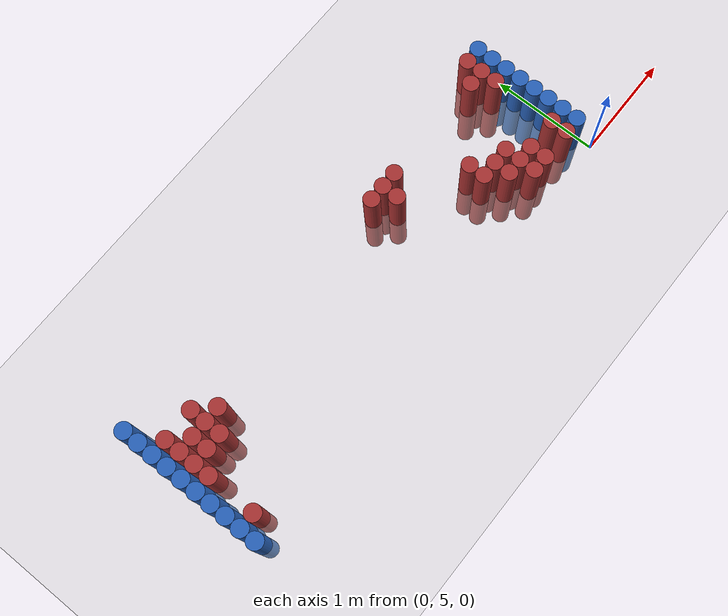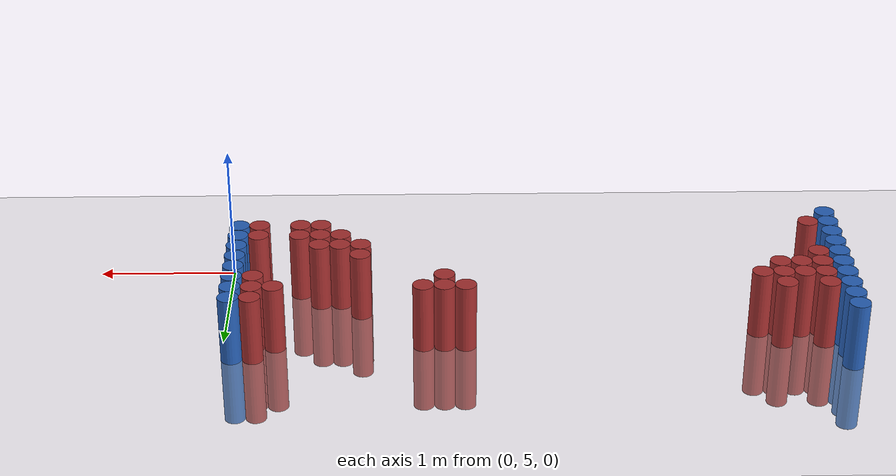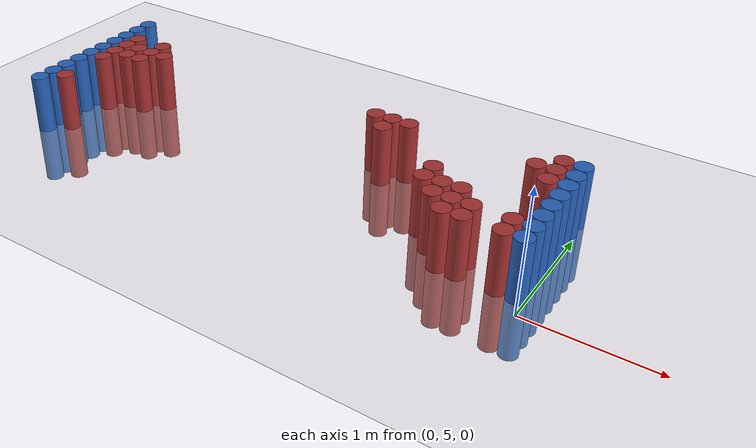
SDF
<sdf version="1.6">
 <world name="default">
  <model name="ground_plane">
   <static>1</static>
   <link name="link">
    <collision name="collision">
     <geometry><plane><normal>0 0 1</normal><size>100 100</size></plane></geometry>
     <surface><friction><ode><mu>100</mu><mu2>50</mu2></ode></friction></surface>
    </collision>
    <visual name="visual">
     <cast_shadows>0</cast_shadows>
     <geometry><plane><normal>0 0 1</normal><size>100 100</size></plane></geometry>
     <material>
      <script><uri>file://media/materials/scripts/gazebo.material</uri><name>Gazebo/Grey</name></script>
     </material>
    </visual>
   </link>
  </model>
  <model name="unit_cylinder_95">
   <static>1</static>
   <pose>-4.425000 5.025000 0.000000 0.000000 0.000000 0.000000</pose>
   <link name="link">
    <inertial>
     <mass>1</mass>
     <inertia><ixx>0.145833</ixx><ixy>0</ixy><ixz>0</ixz><iyy>0.145833</iyy><iyz>0</iyz><izz>0.125</izz></inertia>
    </inertial>
    <collision name="collision">
     <geometry><cylinder><radius>0.075000</radius><length>1</length></cylinder></geometry>
    </collision>
    <visual name="visual">
     <geometry><cylinder><radius>0.075000</radius><length>1</length></cylinder></geometry>
     <material>
      <ambient>0.152000 0.379000 0.720000 1</ambient>
      <diffuse>0.152000 0.379000 0.720000 1</diffuse>
     </material>
     <material>
      <script><name>Gazebo/Grey</name><uri>file://media/materials/scripts/gazebo.material</uri></script>
     </material>
    </visual>
   </link>
  </model>
  <model name="unit_cylinder_96">
   <static>1</static>
   <pose>-4.425000 5.175000 0.000000 0.000000 0.000000 0.000000</pose>
   <link name="link">
    <inertial>
     <mass>1</mass>
     <inertia><ixx>0.145833</ixx><ixy>0</ixy><ixz>0</ixz><iyy>0.145833</iyy><iyz>0</iyz><izz>0.125</izz></inertia>
    </inertial>
    <collision name="collision">
     <geometry><cylinder><radius>0.075000</radius><length>1</length></cylinder></geometry>
    </collision>
    <visual name="visual">
     <geometry><cylinder><radius>0.075000</radius><length>1</length></cylinder></geometry>
     <material>
      <ambient>0.152000 0.379000 0.720000 1</ambient>
      <diffuse>0.152000 0.379000 0.720000 1</diffuse>
     </material>
     <material>
      <script><name>Gazebo/Grey</name><uri>file://media/materials/scripts/gazebo.material</uri></script>
     </material>
    </visual>
   </link>
  </model>
  <model name="unit_cylinder_97">
   <static>1</static>
   <pose>-4.425000 5.325000 0.000000 0.000000 0.000000 0.000000</pose>
   <link name="link">
    <inertial>
     <mass>1</mass>
     <inertia><ixx>0.145833</ixx><ixy>0</ixy><ixz>0</ixz><iyy>0.145833</iyy><iyz>0</iyz><izz>0.125</izz></inertia>
    </inertial>
    <collision name="collision">
     <geometry><cylinder><radius>0.075000</radius><length>1</length></cylinder></geometry>
    </collision>
    <visual name="visual">
     <geometry><cylinder><radius>0.075000</radius><length>1</length></cylinder></geometry>
     <material>
      <ambient>0.152000 0.379000 0.720000 1</ambient>
      <diffuse>0.152000 0.379000 0.720000 1</diffuse>
     </material>
     <material>
      <script><name>Gazebo/Grey</name><uri>file://media/materials/scripts/gazebo.material</uri></script>
     </material>
    </visual>
   </link>
  </model>
  <model name="unit_cylinder_98">
   <static>1</static>
   <pose>-4.425000 5.475000 0.000000 0.000000 0.000000 0.000000</pose>
   <link name="link">
    <inertial>
     <mass>1</mass>
     <inertia><ixx>0.145833</ixx><ixy>0</ixy><ixz>0</ixz><iyy>0.145833</iyy><iyz>0</iyz><izz>0.125</izz></inertia>
    </inertial>
    <collision name="collision">
     <geometry><cylinder><radius>0.075000</radius><length>1</length></cylinder></geometry>
    </collision>
    <visual name="visual">
     <geometry><cylinder><radius>0.075000</radius><length>1</length></cylinder></geometry>
     <material>
      <ambient>0.152000 0.379000 0.720000 1</ambient>
      <diffuse>0.152000 0.379000 0.720000 1</diffuse>
     </material>
     <material>
      <script><name>Gazebo/Grey</name><uri>file://media/materials/scripts/gazebo.material</uri></script>
     </material>
    </visual>
   </link>
  </model>
  <model name="unit_cylinder_99">
   <static>1</static>
   <pose>-4.425000 5.625000 0.000000 0.000000 0.000000 0.000000</pose>
   <link name="link">
    <inertial>
     <mass>1</mass>
     <inertia><ixx>0.145833</ixx><ixy>0</ixy><ixz>0</ixz><iyy>0.145833</iyy><iyz>0</iyz><izz>0.125</izz></inertia>
    </inertial>
    <collision name="collision">
     <geometry><cylinder><radius>0.075000</radius><length>1</length></cylinder></geometry>
    </collision>
    <visual name="visual">
     <geometry><cylinder><radius>0.075000</radius><length>1</length></cylinder></geometry>
     <material>
      <ambient>0.152000 0.379000 0.720000 1</ambient>
      <diffuse>0.152000 0.379000 0.720000 1</diffuse>
     </material>
     <material>
      <script><name>Gazebo/Grey</name><uri>file://media/materials/scripts/gazebo.material</uri></script>
     </material>
    </visual>
   </link>
  </model>
  <model name="unit_cylinder_100">
   <static>1</static>
   <pose>-4.425000 5.775000 0.000000 0.000000 0.000000 0.000000</pose>
   <link name="link">
    <inertial>
     <mass>1</mass>
     <inertia><ixx>0.145833</ixx><ixy>0</ixy><ixz>0</ixz><iyy>0.145833</iyy><iyz>0</iyz><izz>0.125</izz></inertia>
    </inertial>
    <collision name="collision">
     <geometry><cylinder><radius>0.075000</radius><length>1</length></cylinder></geometry>
    </collision>
    <visual name="visual">
     <geometry><cylinder><radius>0.075000</radius><length>1</length></cylinder></geometry>
     <material>
      <ambient>0.152000 0.379000 0.720000 1</ambient>
      <diffuse>0.152000 0.379000 0.720000 1</diffuse>
     </material>
     <material>
      <script><name>Gazebo/Grey</name><uri>file://media/materials/scripts/gazebo.material</uri></script>
     </material>
    </visual>
   </link>
  </model>
  <model name="unit_cylinder_101">
   <static>1</static>
   <pose>-4.425000 5.925000 0.000000 0.000000 0.000000 0.000000</pose>
   <link name="link">
    <inertial>
     <mass>1</mass>
     <inertia><ixx>0.145833</ixx><ixy>0</ixy><ixz>0</ixz><iyy>0.145833</iyy><iyz>0</iyz><izz>0.125</izz></inertia>
    </inertial>
    <collision name="collision">
     <geometry><cylinder><radius>0.075000</radius><length>1</length></cylinder></geometry>
    </collision>
    <visual name="visual">
     <geometry><cylinder><radius>0.075000</radius><length>1</length></cylinder></geometry>
     <material>
      <ambient>0.152000 0.379000 0.720000 1</ambient>
      <diffuse>0.152000 0.379000 0.720000 1</diffuse>
     </material>
     <material>
      <script><name>Gazebo/Grey</name><uri>file://media/materials/scripts/gazebo.material</uri></script>
     </material>
    </visual>
   </link>
  </model>
  <model name="unit_cylinder_102">
   <static>1</static>
   <pose>-4.425000 6.075000 0.000000 0.000000 0.000000 0.000000</pose>
   <link name="link">
    <inertial>
     <mass>1</mass>
     <inertia><ixx>0.145833</ixx><ixy>0</ixy><ixz>0</ixz><iyy>0.145833</iyy><iyz>0</iyz><izz>0.125</izz></inertia>
    </inertial>
    <collision name="collision">
     <geometry><cylinder><radius>0.075000</radius><length>1</length></cylinder></geometry>
    </collision>
    <visual name="visual">
     <geometry><cylinder><radius>0.075000</radius><length>1</length></cylinder></geometry>
     <material>
      <ambient>0.152000 0.379000 0.720000 1</ambient>
      <diffuse>0.152000 0.379000 0.720000 1</diffuse>
     </material>
     <material>
      <script><name>Gazebo/Grey</name><uri>file://media/materials/scripts/gazebo.material</uri></script>
     </material>
    </visual>
   </link>
  </model>
  <model name="unit_cylinder_103">
   <static>1</static>
   <pose>-4.425000 6.225000 0.000000 0.000000 0.000000 0.000000</pose>
   <link name="link">
    <inertial>
     <mass>1</mass>
     <inertia><ixx>0.145833</ixx><ixy>0</ixy><ixz>0</ixz><iyy>0.145833</iyy><iyz>0</iyz><izz>0.125</izz></inertia>
    </inertial>
    <collision name="collision">
     <geometry><cylinder><radius>0.075000</radius><length>1</length></cylinder></geometry>
    </collision>
    <visual name="visual">
     <geometry><cylinder><radius>0.075000</radius><length>1</length></cylinder></geometry>
     <material>
      <ambient>0.152000 0.379000 0.720000 1</ambient>
      <diffuse>0.152000 0.379000 0.720000 1</diffuse>
     </material>
     <material>
      <script><name>Gazebo/Grey</name><uri>file://media/materials/scripts/gazebo.material</uri></script>
     </material>
    </visual>
   </link>
  </model>
  <model name="unit_cylinder_104">
   <static>1</static>
   <pose>-4.425000 6.375000 0.000000 0.000000 0.000000 0.000000</pose>
   <link name="link">
    <inertial>
     <mass>1</mass>
     <inertia><ixx>0.145833</ixx><ixy>0</ixy><ixz>0</ixz><iyy>0.145833</iyy><iyz>0</iyz><izz>0.125</izz></inertia>
    </inertial>
    <collision name="collision">
     <geometry><cylinder><radius>0.075000</radius><length>1</length></cylinder></geometry>
    </collision>
    <visual name="visual">
     <geometry><cylinder><radius>0.075000</radius><length>1</length></cylinder></geometry>
     <material>
      <ambient>0.152000 0.379000 0.720000 1</ambient>
      <diffuse>0.152000 0.379000 0.720000 1</diffuse>
     </material>
     <material>
      <script><name>Gazebo/Grey</name><uri>file://media/materials/scripts/gazebo.material</uri></script>
     </material>
    </visual>
   </link>
  </model>
  <model name="unit_cylinder_126">
   <static>1</static>
   <pose>-4.275000 5.175000 0.000000 0.000000 0.000000 0.000000</pose>
   <link name="link">
    <inertial>
     <mass>1</mass>
     <inertia><ixx>0.145833</ixx><ixy>0</ixy><ixz>0</ixz><iyy>0.145833</iyy><iyz>0</iyz><izz>0.125</izz></inertia>
    </inertial>
    <collision name="collision">
     <geometry><cylinder><radius>0.075000</radius><length>1</length></cylinder></geometry>
    </collision>
    <visual name="visual">
     <geometry><cylinder><radius>0.075000</radius><length>1</length></cylinder></geometry>
     <material>
      <ambient>0.648000 0.192000 0.192000 1</ambient>
      <diffuse>0.648000 0.192000 0.192000 1</diffuse>
     </material>
     <material>
      <script><name>Gazebo/Grey</name><uri>file://media/materials/scripts/gazebo.material</uri></script>
     </material>
    </visual>
   </link>
  </model>
  <model name="unit_cylinder_127">
   <static>1</static>
   <pose>-4.275000 5.625000 0.000000 0.000000 0.000000 0.000000</pose>
   <link name="link">
    <inertial>
     <mass>1</mass>
     <inertia><ixx>0.145833</ixx><ixy>0</ixy><ixz>0</ixz><iyy>0.145833</iyy><iyz>0</iyz><izz>0.125</izz></inertia>
    </inertial>
    <collision name="collision">
     <geometry><cylinder><radius>0.075000</radius><length>1</length></cylinder></geometry>
    </collision>
    <visual name="visual">
     <geometry><cylinder><radius>0.075000</radius><length>1</length></cylinder></geometry>
     <material>
      <ambient>0.648000 0.192000 0.192000 1</ambient>
      <diffuse>0.648000 0.192000 0.192000 1</diffuse>
     </material>
     <material>
      <script><name>Gazebo/Grey</name><uri>file://media/materials/scripts/gazebo.material</uri></script>
     </material>
    </visual>
   </link>
  </model>
  <model name="unit_cylinder_128">
   <static>1</static>
   <pose>-4.275000 5.775000 0.000000 0.000000 0.000000 0.000000</pose>
   <link name="link">
    <inertial>
     <mass>1</mass>
     <inertia><ixx>0.145833</ixx><ixy>0</ixy><ixz>0</ixz><iyy>0.145833</iyy><iyz>0</iyz><izz>0.125</izz></inertia>
    </inertial>
    <collision name="collision">
     <geometry><cylinder><radius>0.075000</radius><length>1</length></cylinder></geometry>
    </collision>
    <visual name="visual">
     <geometry><cylinder><radius>0.075000</radius><length>1</length></cylinder></geometry>
     <material>
      <ambient>0.648000 0.192000 0.192000 1</ambient>
      <diffuse>0.648000 0.192000 0.192000 1</diffuse>
     </material>
     <material>
      <script><name>Gazebo/Grey</name><uri>file://media/materials/scripts/gazebo.material</uri></script>
     </material>
    </visual>
   </link>
  </model>
  <model name="unit_cylinder_129">
   <static>1</static>
   <pose>-4.275000 5.925000 0.000000 0.000000 0.000000 0.000000</pose>
   <link name="link">
    <inertial>
     <mass>1</mass>
     <inertia><ixx>0.145833</ixx><ixy>0</ixy><ixz>0</ixz><iyy>0.145833</iyy><iyz>0</iyz><izz>0.125</izz></inertia>
    </inertial>
    <collision name="collision">
     <geometry><cylinder><radius>0.075000</radius><length>1</length></cylinder></geometry>
    </collision>
    <visual name="visual">
     <geometry><cylinder><radius>0.075000</radius><length>1</length></cylinder></geometry>
     <material>
      <ambient>0.648000 0.192000 0.192000 1</ambient>
      <diffuse>0.648000 0.192000 0.192000 1</diffuse>
     </material>
     <material>
      <script><name>Gazebo/Grey</name><uri>file://media/materials/scripts/gazebo.material</uri></script>
     </material>
    </visual>
   </link>
  </model>
  <model name="unit_cylinder_130">
   <static>1</static>
   <pose>-4.275000 6.075000 0.000000 0.000000 0.000000 0.000000</pose>
   <link name="link">
    <inertial>
     <mass>1</mass>
     <inertia><ixx>0.145833</ixx><ixy>0</ixy><ixz>0</ixz><iyy>0.145833</iyy><iyz>0</iyz><izz>0.125</izz></inertia>
    </inertial>
    <collision name="collision">
     <geometry><cylinder><radius>0.075000</radius><length>1</length></cylinder></geometry>
    </collision>
    <visual name="visual">
     <geometry><cylinder><radius>0.075000</radius><length>1</length></cylinder></geometry>
     <material>
      <ambient>0.648000 0.192000 0.192000 1</ambient>
      <diffuse>0.648000 0.192000 0.192000 1</diffuse>
     </material>
     <material>
      <script><name>Gazebo/Grey</name><uri>file://media/materials/scripts/gazebo.material</uri></script>
     </material>
    </visual>
   </link>
  </model>
  <model name="unit_cylinder_142">
   <static>1</static>
   <pose>-4.125000 5.775000 0.000000 0.000000 0.000000 0.000000</pose>
   <link name="link">
    <inertial>
     <mass>1</mass>
     <inertia><ixx>0.145833</ixx><ixy>0</ixy><ixz>0</ixz><iyy>0.145833</iyy><iyz>0</iyz><izz>0.125</izz></inertia>
    </inertial>
    <collision name="collision">
     <geometry><cylinder><radius>0.075000</radius><length>1</length></cylinder></geometry>
    </collision>
    <visual name="visual">
     <geometry><cylinder><radius>0.075000</radius><length>1</length></cylinder></geometry>
     <material>
      <ambient>0.648000 0.192000 0.192000 1</ambient>
      <diffuse>0.648000 0.192000 0.192000 1</diffuse>
     </material>
     <material>
      <script><name>Gazebo/Grey</name><uri>file://media/materials/scripts/gazebo.material</uri></script>
     </material>
    </visual>
   </link>
  </model>
  <model name="unit_cylinder_143">
   <static>1</static>
   <pose>-4.125000 5.925000 0.000000 0.000000 0.000000 0.000000</pose>
   <link name="link">
    <inertial>
     <mass>1</mass>
     <inertia><ixx>0.145833</ixx><ixy>0</ixy><ixz>0</ixz><iyy>0.145833</iyy><iyz>0</iyz><izz>0.125</izz></inertia>
    </inertial>
    <collision name="collision">
     <geometry><cylinder><radius>0.075000</radius><length>1</length></cylinder></geometry>
    </collision>
    <visual name="visual">
     <geometry><cylinder><radius>0.075000</radius><length>1</length></cylinder></geometry>
     <material>
      <ambient>0.648000 0.192000 0.192000 1</ambient>
      <diffuse>0.648000 0.192000 0.192000 1</diffuse>
     </material>
     <material>
      <script><name>Gazebo/Grey</name><uri>file://media/materials/scripts/gazebo.material</uri></script>
     </material>
    </visual>
   </link>
  </model>
  <model name="unit_cylinder_145">
   <static>1</static>
   <pose>-3.975000 5.775000 0.000000 0.000000 0.000000 0.000000</pose>
   <link name="link">
    <inertial>
     <mass>1</mass>
     <inertia><ixx>0.145833</ixx><ixy>0</ixy><ixz>0</ixz><iyy>0.145833</iyy><iyz>0</iyz><izz>0.125</izz></inertia>
    </inertial>
    <collision name="collision">
     <geometry><cylinder><radius>0.075000</radius><length>1</length></cylinder></geometry>
    </collision>
    <visual name="visual">
     <geometry><cylinder><radius>0.075000</radius><length>1</length></cylinder></geometry>
     <material>
      <ambient>0.648000 0.192000 0.192000 1</ambient>
      <diffuse>0.648000 0.192000 0.192000 1</diffuse>
     </material>
     <material>
      <script><name>Gazebo/Grey</name><uri>file://media/materials/scripts/gazebo.material</uri></script>
     </material>
    </visual>
   </link>
  </model>
  <model name="unit_cylinder_146">
   <static>1</static>
   <pose>-3.975000 5.925000 0.000000 0.000000 0.000000 0.000000</pose>
   <link name="link">
    <inertial>
     <mass>1</mass>
     <inertia><ixx>0.145833</ixx><ixy>0</ixy><ixz>0</ixz><iyy>0.145833</iyy><iyz>0</iyz><izz>0.125</izz></inertia>
    </inertial>
    <collision name="collision">
     <geometry><cylinder><radius>0.075000</radius><length>1</length></cylinder></geometry>
    </collision>
    <visual name="visual">
     <geometry><cylinder><radius>0.075000</radius><length>1</length></cylinder></geometry>
     <material>
      <ambient>0.648000 0.192000 0.192000 1</ambient>
      <diffuse>0.648000 0.192000 0.192000 1</diffuse>
     </material>
     <material>
      <script><name>Gazebo/Grey</name><uri>file://media/materials/scripts/gazebo.material</uri></script>
     </material>
    </visual>
   </link>
  </model>
  <model name="unit_cylinder_147">
   <static>1</static>
   <pose>-3.975000 6.075000 0.000000 0.000000 0.000000 0.000000</pose>
   <link name="link">
    <inertial>
     <mass>1</mass>
     <inertia><ixx>0.145833</ixx><ixy>0</ixy><ixz>0</ixz><iyy>0.145833</iyy><iyz>0</iyz><izz>0.125</izz></inertia>
    </inertial>
    <collision name="collision">
     <geometry><cylinder><radius>0.075000</radius><length>1</length></cylinder></geometry>
    </collision>
    <visual name="visual">
     <geometry><cylinder><radius>0.075000</radius><length>1</length></cylinder></geometry>
     <material>
      <ambient>0.648000 0.192000 0.192000 1</ambient>
      <diffuse>0.648000 0.192000 0.192000 1</diffuse>
     </material>
     <material>
      <script><name>Gazebo/Grey</name><uri>file://media/materials/scripts/gazebo.material</uri></script>
     </material>
    </visual>
   </link>
  </model>
  <model name="unit_cylinder_149">
   <static>1</static>
   <pose>-3.825000 5.925000 0.000000 0.000000 0.000000 0.000000</pose>
   <link name="link">
    <inertial>
     <mass>1</mass>
     <inertia><ixx>0.145833</ixx><ixy>0</ixy><ixz>0</ixz><iyy>0.145833</iyy><iyz>0</iyz><izz>0.125</izz></inertia>
    </inertial>
    <collision name="collision">
     <geometry><cylinder><radius>0.075000</radius><length>1</length></cylinder></geometry>
    </collision>
    <visual name="visual">
     <geometry><cylinder><radius>0.075000</radius><length>1</length></cylinder></geometry>
     <material>
      <ambient>0.648000 0.192000 0.192000 1</ambient>
      <diffuse>0.648000 0.192000 0.192000 1</diffuse>
     </material>
     <material>
      <script><name>Gazebo/Grey</name><uri>file://media/materials/scripts/gazebo.material</uri></script>
     </material>
    </visual>
   </link>
  </model>
  <model name="unit_cylinder_202">
   <static>1</static>
   <pose>-1.725000 6.075000 0.000000 0.000000 0.000000 0.000000</pose>
   <link name="link">
    <inertial>
     <mass>1</mass>
     <inertia><ixx>0.145833</ixx><ixy>0</ixy><ixz>0</ixz><iyy>0.145833</iyy><iyz>0</iyz><izz>0.125</izz></inertia>
    </inertial>
    <collision name="collision">
     <geometry><cylinder><radius>0.075000</radius><length>1</length></cylinder></geometry>
    </collision>
    <visual name="visual">
     <geometry><cylinder><radius>0.075000</radius><length>1</length></cylinder></geometry>
     <material>
      <ambient>0.648000 0.192000 0.192000 1</ambient>
      <diffuse>0.648000 0.192000 0.192000 1</diffuse>
     </material>
     <material>
      <script><name>Gazebo/Grey</name><uri>file://media/materials/scripts/gazebo.material</uri></script>
     </material>
    </visual>
   </link>
  </model>
  <model name="unit_cylinder_207">
   <static>1</static>
   <pose>-1.575000 5.925000 0.000000 0.000000 0.000000 0.000000</pose>
   <link name="link">
    <inertial>
     <mass>1</mass>
     <inertia><ixx>0.145833</ixx><ixy>0</ixy><ixz>0</ixz><iyy>0.145833</iyy><iyz>0</iyz><izz>0.125</izz></inertia>
    </inertial>
    <collision name="collision">
     <geometry><cylinder><radius>0.075000</radius><length>1</length></cylinder></geometry>
    </collision>
    <visual name="visual">
     <geometry><cylinder><radius>0.075000</radius><length>1</length></cylinder></geometry>
     <material>
      <ambient>0.648000 0.192000 0.192000 1</ambient>
      <diffuse>0.648000 0.192000 0.192000 1</diffuse>
     </material>
     <material>
      <script><name>Gazebo/Grey</name><uri>file://media/materials/scripts/gazebo.material</uri></script>
     </material>
    </visual>
   </link>
  </model>
  <model name="unit_cylinder_208">
   <static>1</static>
   <pose>-1.575000 6.075000 0.000000 0.000000 0.000000 0.000000</pose>
   <link name="link">
    <inertial>
     <mass>1</mass>
     <inertia><ixx>0.145833</ixx><ixy>0</ixy><ixz>0</ixz><iyy>0.145833</iyy><iyz>0</iyz><izz>0.125</izz></inertia>
    </inertial>
    <collision name="collision">
     <geometry><cylinder><radius>0.075000</radius><length>1</length></cylinder></geometry>
    </collision>
    <visual name="visual">
     <geometry><cylinder><radius>0.075000</radius><length>1</length></cylinder></geometry>
     <material>
      <ambient>0.648000 0.192000 0.192000 1</ambient>
      <diffuse>0.648000 0.192000 0.192000 1</diffuse>
     </material>
     <material>
      <script><name>Gazebo/Grey</name><uri>file://media/materials/scripts/gazebo.material</uri></script>
     </material>
    </visual>
   </link>
  </model>
  <model name="unit_cylinder_213">
   <static>1</static>
   <pose>-1.425000 6.075000 0.000000 0.000000 0.000000 0.000000</pose>
   <link name="link">
    <inertial>
     <mass>1</mass>
     <inertia><ixx>0.145833</ixx><ixy>0</ixy><ixz>0</ixz><iyy>0.145833</iyy><iyz>0</iyz><izz>0.125</izz></inertia>
    </inertial>
    <collision name="collision">
     <geometry><cylinder><radius>0.075000</radius><length>1</length></cylinder></geometry>
    </collision>
    <visual name="visual">
     <geometry><cylinder><radius>0.075000</radius><length>1</length></cylinder></geometry>
     <material>
      <ambient>0.648000 0.192000 0.192000 1</ambient>
      <diffuse>0.648000 0.192000 0.192000 1</diffuse>
     </material>
     <material>
      <script><name>Gazebo/Grey</name><uri>file://media/materials/scripts/gazebo.material</uri></script>
     </material>
    </visual>
   </link>
  </model>
  <model name="unit_cylinder_223">
   <static>1</static>
   <pose>-0.975000 5.475000 0.000000 0.000000 0.000000 0.000000</pose>
   <link name="link">
    <inertial>
     <mass>1</mass>
     <inertia><ixx>0.145833</ixx><ixy>0</ixy><ixz>0</ixz><iyy>0.145833</iyy><iyz>0</iyz><izz>0.125</izz></inertia>
    </inertial>
    <collision name="collision">
     <geometry><cylinder><radius>0.075000</radius><length>1</length></cylinder></geometry>
    </collision>
    <visual name="visual">
     <geometry><cylinder><radius>0.075000</radius><length>1</length></cylinder></geometry>
     <material>
      <ambient>0.648000 0.192000 0.192000 1</ambient>
      <diffuse>0.648000 0.192000 0.192000 1</diffuse>
     </material>
     <material>
      <script><name>Gazebo/Grey</name><uri>file://media/materials/scripts/gazebo.material</uri></script>
     </material>
    </visual>
   </link>
  </model>
  <model name="unit_cylinder_224">
   <static>1</static>
   <pose>-0.975000 5.625000 0.000000 0.000000 0.000000 0.000000</pose>
   <link name="link">
    <inertial>
     <mass>1</mass>
     <inertia><ixx>0.145833</ixx><ixy>0</ixy><ixz>0</ixz><iyy>0.145833</iyy><iyz>0</iyz><izz>0.125</izz></inertia>
    </inertial>
    <collision name="collision">
     <geometry><cylinder><radius>0.075000</radius><length>1</length></cylinder></geometry>
    </collision>
    <visual name="visual">
     <geometry><cylinder><radius>0.075000</radius><length>1</length></cylinder></geometry>
     <material>
      <ambient>0.648000 0.192000 0.192000 1</ambient>
      <diffuse>0.648000 0.192000 0.192000 1</diffuse>
     </material>
     <material>
      <script><name>Gazebo/Grey</name><uri>file://media/materials/scripts/gazebo.material</uri></script>
     </material>
    </visual>
   </link>
  </model>
  <model name="unit_cylinder_228">
   <static>1</static>
   <pose>-0.825000 5.325000 0.000000 0.000000 0.000000 0.000000</pose>
   <link name="link">
    <inertial>
     <mass>1</mass>
     <inertia><ixx>0.145833</ixx><ixy>0</ixy><ixz>0</ixz><iyy>0.145833</iyy><iyz>0</iyz><izz>0.125</izz></inertia>
    </inertial>
    <collision name="collision">
     <geometry><cylinder><radius>0.075000</radius><length>1</length></cylinder></geometry>
    </collision>
    <visual name="visual">
     <geometry><cylinder><radius>0.075000</radius><length>1</length></cylinder></geometry>
     <material>
      <ambient>0.648000 0.192000 0.192000 1</ambient>
      <diffuse>0.648000 0.192000 0.192000 1</diffuse>
     </material>
     <material>
      <script><name>Gazebo/Grey</name><uri>file://media/materials/scripts/gazebo.material</uri></script>
     </material>
    </visual>
   </link>
  </model>
  <model name="unit_cylinder_229">
   <static>1</static>
   <pose>-0.825000 5.475000 0.000000 0.000000 0.000000 0.000000</pose>
   <link name="link">
    <inertial>
     <mass>1</mass>
     <inertia><ixx>0.145833</ixx><ixy>0</ixy><ixz>0</ixz><iyy>0.145833</iyy><iyz>0</iyz><izz>0.125</izz></inertia>
    </inertial>
    <collision name="collision">
     <geometry><cylinder><radius>0.075000</radius><length>1</length></cylinder></geometry>
    </collision>
    <visual name="visual">
     <geometry><cylinder><radius>0.075000</radius><length>1</length></cylinder></geometry>
     <material>
      <ambient>0.648000 0.192000 0.192000 1</ambient>
      <diffuse>0.648000 0.192000 0.192000 1</diffuse>
     </material>
     <material>
      <script><name>Gazebo/Grey</name><uri>file://media/materials/scripts/gazebo.material</uri></script>
     </material>
    </visual>
   </link>
  </model>
  <model name="unit_cylinder_232">
   <static>1</static>
   <pose>-0.675000 5.175000 0.000000 0.000000 0.000000 0.000000</pose>
   <link name="link">
    <inertial>
     <mass>1</mass>
     <inertia><ixx>0.145833</ixx><ixy>0</ixy><ixz>0</ixz><iyy>0.145833</iyy><iyz>0</iyz><izz>0.125</izz></inertia>
    </inertial>
    <collision name="collision">
     <geometry><cylinder><radius>0.075000</radius><length>1</length></cylinder></geometry>
    </collision>
    <visual name="visual">
     <geometry><cylinder><radius>0.075000</radius><length>1</length></cylinder></geometry>
     <material>
      <ambient>0.648000 0.192000 0.192000 1</ambient>
      <diffuse>0.648000 0.192000 0.192000 1</diffuse>
     </material>
     <material>
      <script><name>Gazebo/Grey</name><uri>file://media/materials/scripts/gazebo.material</uri></script>
     </material>
    </visual>
   </link>
  </model>
  <model name="unit_cylinder_233">
   <static>1</static>
   <pose>-0.675000 5.325000 0.000000 0.000000 0.000000 0.000000</pose>
   <link name="link">
    <inertial>
     <mass>1</mass>
     <inertia><ixx>0.145833</ixx><ixy>0</ixy><ixz>0</ixz><iyy>0.145833</iyy><iyz>0</iyz><izz>0.125</izz></inertia>
    </inertial>
    <collision name="collision">
     <geometry><cylinder><radius>0.075000</radius><length>1</length></cylinder></geometry>
    </collision>
    <visual name="visual">
     <geometry><cylinder><radius>0.075000</radius><length>1</length></cylinder></geometry>
     <material>
      <ambient>0.648000 0.192000 0.192000 1</ambient>
      <diffuse>0.648000 0.192000 0.192000 1</diffuse>
     </material>
     <material>
      <script><name>Gazebo/Grey</name><uri>file://media/materials/scripts/gazebo.material</uri></script>
     </material>
    </visual>
   </link>
  </model>
  <model name="unit_cylinder_234">
   <static>1</static>
   <pose>-0.675000 5.475000 0.000000 0.000000 0.000000 0.000000</pose>
   <link name="link">
    <inertial>
     <mass>1</mass>
     <inertia><ixx>0.145833</ixx><ixy>0</ixy><ixz>0</ixz><iyy>0.145833</iyy><iyz>0</iyz><izz>0.125</izz></inertia>
    </inertial>
    <collision name="collision">
     <geometry><cylinder><radius>0.075000</radius><length>1</length></cylinder></geometry>
    </collision>
    <visual name="visual">
     <geometry><cylinder><radius>0.075000</radius><length>1</length></cylinder></geometry>
     <material>
      <ambient>0.648000 0.192000 0.192000 1</ambient>
      <diffuse>0.648000 0.192000 0.192000 1</diffuse>
     </material>
     <material>
      <script><name>Gazebo/Grey</name><uri>file://media/materials/scripts/gazebo.material</uri></script>
     </material>
    </visual>
   </link>
  </model>
  <model name="unit_cylinder_237">
   <static>1</static>
   <pose>-0.525000 5.175000 0.000000 0.000000 0.000000 0.000000</pose>
   <link name="link">
    <inertial>
     <mass>1</mass>
     <inertia><ixx>0.145833</ixx><ixy>0</ixy><ixz>0</ixz><iyy>0.145833</iyy><iyz>0</iyz><izz>0.125</izz></inertia>
    </inertial>
    <collision name="collision">
     <geometry><cylinder><radius>0.075000</radius><length>1</length></cylinder></geometry>
    </collision>
    <visual name="visual">
     <geometry><cylinder><radius>0.075000</radius><length>1</length></cylinder></geometry>
     <material>
      <ambient>0.648000 0.192000 0.192000 1</ambient>
      <diffuse>0.648000 0.192000 0.192000 1</diffuse>
     </material>
     <material>
      <script><name>Gazebo/Grey</name><uri>file://media/materials/scripts/gazebo.material</uri></script>
     </material>
    </visual>
   </link>
  </model>
  <model name="unit_cylinder_238">
   <static>1</static>
   <pose>-0.525000 5.325000 0.000000 0.000000 0.000000 0.000000</pose>
   <link name="link">
    <inertial>
     <mass>1</mass>
     <inertia><ixx>0.145833</ixx><ixy>0</ixy><ixz>0</ixz><iyy>0.145833</iyy><iyz>0</iyz><izz>0.125</izz></inertia>
    </inertial>
    <collision name="collision">
     <geometry><cylinder><radius>0.075000</radius><length>1</length></cylinder></geometry>
    </collision>
    <visual name="visual">
     <geometry><cylinder><radius>0.075000</radius><length>1</length></cylinder></geometry>
     <material>
      <ambient>0.648000 0.192000 0.192000 1</ambient>
      <diffuse>0.648000 0.192000 0.192000 1</diffuse>
     </material>
     <material>
      <script><name>Gazebo/Grey</name><uri>file://media/materials/scripts/gazebo.material</uri></script>
     </material>
    </visual>
   </link>
  </model>
  <model name="unit_cylinder_241">
   <static>1</static>
   <pose>-0.375000 6.075000 0.000000 0.000000 0.000000 0.000000</pose>
   <link name="link">
    <inertial>
     <mass>1</mass>
     <inertia><ixx>0.145833</ixx><ixy>0</ixy><ixz>0</ixz><iyy>0.145833</iyy><iyz>0</iyz><izz>0.125</izz></inertia>
    </inertial>
    <collision name="collision">
     <geometry><cylinder><radius>0.075000</radius><length>1</length></cylinder></geometry>
    </collision>
    <visual name="visual">
     <geometry><cylinder><radius>0.075000</radius><length>1</length></cylinder></geometry>
     <material>
      <ambient>0.648000 0.192000 0.192000 1</ambient>
      <diffuse>0.648000 0.192000 0.192000 1</diffuse>
     </material>
     <material>
      <script><name>Gazebo/Grey</name><uri>file://media/materials/scripts/gazebo.material</uri></script>
     </material>
    </visual>
   </link>
  </model>
  <model name="unit_cylinder_243">
   <static>1</static>
   <pose>-0.225000 5.175000 0.000000 0.000000 0.000000 0.000000</pose>
   <link name="link">
    <inertial>
     <mass>1</mass>
     <inertia><ixx>0.145833</ixx><ixy>0</ixy><ixz>0</ixz><iyy>0.145833</iyy><iyz>0</iyz><izz>0.125</izz></inertia>
    </inertial>
    <collision name="collision">
     <geometry><cylinder><radius>0.075000</radius><length>1</length></cylinder></geometry>
    </collision>
    <visual name="visual">
     <geometry><cylinder><radius>0.075000</radius><length>1</length></cylinder></geometry>
     <material>
      <ambient>0.648000 0.192000 0.192000 1</ambient>
      <diffuse>0.648000 0.192000 0.192000 1</diffuse>
     </material>
     <material>
      <script><name>Gazebo/Grey</name><uri>file://media/materials/scripts/gazebo.material</uri></script>
     </material>
    </visual>
   </link>
  </model>
  <model name="unit_cylinder_244">
   <static>1</static>
   <pose>-0.225000 5.325000 0.000000 0.000000 0.000000 0.000000</pose>
   <link name="link">
    <inertial>
     <mass>1</mass>
     <inertia><ixx>0.145833</ixx><ixy>0</ixy><ixz>0</ixz><iyy>0.145833</iyy><iyz>0</iyz><izz>0.125</izz></inertia>
    </inertial>
    <collision name="collision">
     <geometry><cylinder><radius>0.075000</radius><length>1</length></cylinder></geometry>
    </collision>
    <visual name="visual">
     <geometry><cylinder><radius>0.075000</radius><length>1</length></cylinder></geometry>
     <material>
      <ambient>0.648000 0.192000 0.192000 1</ambient>
      <diffuse>0.648000 0.192000 0.192000 1</diffuse>
     </material>
     <material>
      <script><name>Gazebo/Grey</name><uri>file://media/materials/scripts/gazebo.material</uri></script>
     </material>
    </visual>
   </link>
  </model>
  <model name="unit_cylinder_245">
   <static>1</static>
   <pose>-0.225000 5.925000 0.000000 0.000000 0.000000 0.000000</pose>
   <link name="link">
    <inertial>
     <mass>1</mass>
     <inertia><ixx>0.145833</ixx><ixy>0</ixy><ixz>0</ixz><iyy>0.145833</iyy><iyz>0</iyz><izz>0.125</izz></inertia>
    </inertial>
    <collision name="collision">
     <geometry><cylinder><radius>0.075000</radius><length>1</length></cylinder></geometry>
    </collision>
    <visual name="visual">
     <geometry><cylinder><radius>0.075000</radius><length>1</length></cylinder></geometry>
     <material>
      <ambient>0.648000 0.192000 0.192000 1</ambient>
      <diffuse>0.648000 0.192000 0.192000 1</diffuse>
     </material>
     <material>
      <script><name>Gazebo/Grey</name><uri>file://media/materials/scripts/gazebo.material</uri></script>
     </material>
    </visual>
   </link>
  </model>
  <model name="unit_cylinder_246">
   <static>1</static>
   <pose>-0.225000 6.075000 0.000000 0.000000 0.000000 0.000000</pose>
   <link name="link">
    <inertial>
     <mass>1</mass>
     <inertia><ixx>0.145833</ixx><ixy>0</ixy><ixz>0</ixz><iyy>0.145833</iyy><iyz>0</iyz><izz>0.125</izz></inertia>
    </inertial>
    <collision name="collision">
     <geometry><cylinder><radius>0.075000</radius><length>1</length></cylinder></geometry>
    </collision>
    <visual name="visual">
     <geometry><cylinder><radius>0.075000</radius><length>1</length></cylinder></geometry>
     <material>
      <ambient>0.648000 0.192000 0.192000 1</ambient>
      <diffuse>0.648000 0.192000 0.192000 1</diffuse>
     </material>
     <material>
      <script><name>Gazebo/Grey</name><uri>file://media/materials/scripts/gazebo.material</uri></script>
     </material>
    </visual>
   </link>
  </model>
  <model name="unit_cylinder_247">
   <static>1</static>
   <pose>-0.225000 6.225000 0.000000 0.000000 0.000000 0.000000</pose>
   <link name="link">
    <inertial>
     <mass>1</mass>
     <inertia><ixx>0.145833</ixx><ixy>0</ixy><ixz>0</ixz><iyy>0.145833</iyy><iyz>0</iyz><izz>0.125</izz></inertia>
    </inertial>
    <collision name="collision">
     <geometry><cylinder><radius>0.075000</radius><length>1</length></cylinder></geometry>
    </collision>
    <visual name="visual">
     <geometry><cylinder><radius>0.075000</radius><length>1</length></cylinder></geometry>
     <material>
      <ambient>0.648000 0.192000 0.192000 1</ambient>
      <diffuse>0.648000 0.192000 0.192000 1</diffuse>
     </material>
     <material>
      <script><name>Gazebo/Grey</name><uri>file://media/materials/scripts/gazebo.material</uri></script>
     </material>
    </visual>
   </link>
  </model>
  <model name="unit_cylinder_257">
   <static>1</static>
   <pose>-0.075000 5.175000 0.000000 0.000000 0.000000 0.000000</pose>
   <link name="link">
    <inertial>
     <mass>1</mass>
     <inertia><ixx>0.145833</ixx><ixy>0</ixy><ixz>0</ixz><iyy>0.145833</iyy><iyz>0</iyz><izz>0.125</izz></inertia>
    </inertial>
    <collision name="collision">
     <geometry><cylinder><radius>0.075000</radius><length>1</length></cylinder></geometry>
    </collision>
    <visual name="visual">
     <geometry><cylinder><radius>0.075000</radius><length>1</length></cylinder></geometry>
     <material>
      <ambient>0.152000 0.379000 0.720000 1</ambient>
      <diffuse>0.152000 0.379000 0.720000 1</diffuse>
     </material>
     <material>
      <script><name>Gazebo/Grey</name><uri>file://media/materials/scripts/gazebo.material</uri></script>
     </material>
    </visual>
   </link>
  </model>
  <model name="unit_cylinder_258">
   <static>1</static>
   <pose>-0.075000 5.325000 0.000000 0.000000 0.000000 0.000000</pose>
   <link name="link">
    <inertial>
     <mass>1</mass>
     <inertia><ixx>0.145833</ixx><ixy>0</ixy><ixz>0</ixz><iyy>0.145833</iyy><iyz>0</iyz><izz>0.125</izz></inertia>
    </inertial>
    <collision name="collision">
     <geometry><cylinder><radius>0.075000</radius><length>1</length></cylinder></geometry>
    </collision>
    <visual name="visual">
     <geometry><cylinder><radius>0.075000</radius><length>1</length></cylinder></geometry>
     <material>
      <ambient>0.152000 0.379000 0.720000 1</ambient>
      <diffuse>0.152000 0.379000 0.720000 1</diffuse>
     </material>
     <material>
      <script><name>Gazebo/Grey</name><uri>file://media/materials/scripts/gazebo.material</uri></script>
     </material>
    </visual>
   </link>
  </model>
  <model name="unit_cylinder_259">
   <static>1</static>
   <pose>-0.075000 5.475000 0.000000 0.000000 0.000000 0.000000</pose>
   <link name="link">
    <inertial>
     <mass>1</mass>
     <inertia><ixx>0.145833</ixx><ixy>0</ixy><ixz>0</ixz><iyy>0.145833</iyy><iyz>0</iyz><izz>0.125</izz></inertia>
    </inertial>
    <collision name="collision">
     <geometry><cylinder><radius>0.075000</radius><length>1</length></cylinder></geometry>
    </collision>
    <visual name="visual">
     <geometry><cylinder><radius>0.075000</radius><length>1</length></cylinder></geometry>
     <material>
      <ambient>0.152000 0.379000 0.720000 1</ambient>
      <diffuse>0.152000 0.379000 0.720000 1</diffuse>
     </material>
     <material>
      <script><name>Gazebo/Grey</name><uri>file://media/materials/scripts/gazebo.material</uri></script>
     </material>
    </visual>
   </link>
  </model>
  <model name="unit_cylinder_260">
   <static>1</static>
   <pose>-0.075000 5.625000 0.000000 0.000000 0.000000 0.000000</pose>
   <link name="link">
    <inertial>
     <mass>1</mass>
     <inertia><ixx>0.145833</ixx><ixy>0</ixy><ixz>0</ixz><iyy>0.145833</iyy><iyz>0</iyz><izz>0.125</izz></inertia>
    </inertial>
    <collision name="collision">
     <geometry><cylinder><radius>0.075000</radius><length>1</length></cylinder></geometry>
    </collision>
    <visual name="visual">
     <geometry><cylinder><radius>0.075000</radius><length>1</length></cylinder></geometry>
     <material>
      <ambient>0.152000 0.379000 0.720000 1</ambient>
      <diffuse>0.152000 0.379000 0.720000 1</diffuse>
     </material>
     <material>
      <script><name>Gazebo/Grey</name><uri>file://media/materials/scripts/gazebo.material</uri></script>
     </material>
    </visual>
   </link>
  </model>
  <model name="unit_cylinder_261">
   <static>1</static>
   <pose>-0.075000 5.775000 0.000000 0.000000 0.000000 0.000000</pose>
   <link name="link">
    <inertial>
     <mass>1</mass>
     <inertia><ixx>0.145833</ixx><ixy>0</ixy><ixz>0</ixz><iyy>0.145833</iyy><iyz>0</iyz><izz>0.125</izz></inertia>
    </inertial>
    <collision name="collision">
     <geometry><cylinder><radius>0.075000</radius><length>1</length></cylinder></geometry>
    </collision>
    <visual name="visual">
     <geometry><cylinder><radius>0.075000</radius><length>1</length></cylinder></geometry>
     <material>
      <ambient>0.152000 0.379000 0.720000 1</ambient>
      <diffuse>0.152000 0.379000 0.720000 1</diffuse>
     </material>
     <material>
      <script><name>Gazebo/Grey</name><uri>file://media/materials/scripts/gazebo.material</uri></script>
     </material>
    </visual>
   </link>
  </model>
  <model name="unit_cylinder_262">
   <static>1</static>
   <pose>-0.075000 5.925000 0.000000 0.000000 0.000000 0.000000</pose>
   <link name="link">
    <inertial>
     <mass>1</mass>
     <inertia><ixx>0.145833</ixx><ixy>0</ixy><ixz>0</ixz><iyy>0.145833</iyy><iyz>0</iyz><izz>0.125</izz></inertia>
    </inertial>
    <collision name="collision">
     <geometry><cylinder><radius>0.075000</radius><length>1</length></cylinder></geometry>
    </collision>
    <visual name="visual">
     <geometry><cylinder><radius>0.075000</radius><length>1</length></cylinder></geometry>
     <material>
      <ambient>0.152000 0.379000 0.720000 1</ambient>
      <diffuse>0.152000 0.379000 0.720000 1</diffuse>
     </material>
     <material>
      <script><name>Gazebo/Grey</name><uri>file://media/materials/scripts/gazebo.material</uri></script>
     </material>
    </visual>
   </link>
  </model>
  <model name="unit_cylinder_263">
   <static>1</static>
   <pose>-0.075000 6.075000 0.000000 0.000000 0.000000 0.000000</pose>
   <link name="link">
    <inertial>
     <mass>1</mass>
     <inertia><ixx>0.145833</ixx><ixy>0</ixy><ixz>0</ixz><iyy>0.145833</iyy><iyz>0</iyz><izz>0.125</izz></inertia>
    </inertial>
    <collision name="collision">
     <geometry><cylinder><radius>0.075000</radius><length>1</length></cylinder></geometry>
    </collision>
    <visual name="visual">
     <geometry><cylinder><radius>0.075000</radius><length>1</length></cylinder></geometry>
     <material>
      <ambient>0.152000 0.379000 0.720000 1</ambient>
      <diffuse>0.152000 0.379000 0.720000 1</diffuse>
     </material>
     <material>
      <script><name>Gazebo/Grey</name><uri>file://media/materials/scripts/gazebo.material</uri></script>
     </material>
    </visual>
   </link>
  </model>
  <model name="unit_cylinder_264">
   <static>1</static>
   <pose>-0.075000 6.225000 0.000000 0.000000 0.000000 0.000000</pose>
   <link name="link">
    <inertial>
     <mass>1</mass>
     <inertia><ixx>0.145833</ixx><ixy>0</ixy><ixz>0</ixz><iyy>0.145833</iyy><iyz>0</iyz><izz>0.125</izz></inertia>
    </inertial>
    <collision name="collision">
     <geometry><cylinder><radius>0.075000</radius><length>1</length></cylinder></geometry>
    </collision>
    <visual name="visual">
     <geometry><cylinder><radius>0.075000</radius><length>1</length></cylinder></geometry>
     <material>
      <ambient>0.152000 0.379000 0.720000 1</ambient>
      <diffuse>0.152000 0.379000 0.720000 1</diffuse>
     </material>
     <material>
      <script><name>Gazebo/Grey</name><uri>file://media/materials/scripts/gazebo.material</uri></script>
     </material>
    </visual>
   </link>
  </model>
 </world>
</sdf>
